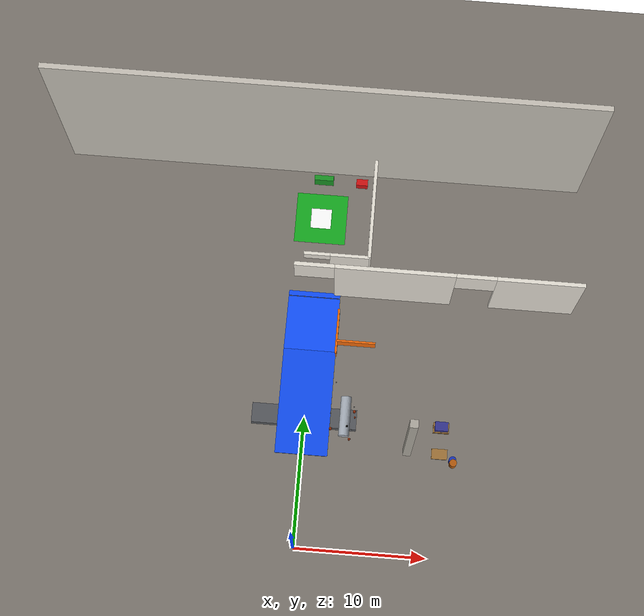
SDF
<sdf version="1.7">
 <world name="wind_tower_world">
  <model name="ground_plane">
   <static>true</static>
   <link name="link">
    <collision name="collision">
     <geometry><plane><normal>0 0 1</normal><size>200 200</size></plane></geometry>
     <surface>
      <friction><ode><mu>0.8</mu><mu2>0.8</mu2></ode></friction>
      <contact><ode><kp>500000</kp><kd>100</kd><max_vel>0.5</max_vel><min_depth>0.002</min_depth></ode></contact>
     </surface>
    </collision>
    <visual name="visual">
     <geometry><plane><normal>0 0 1</normal><size>200 200</size></plane></geometry>
     <material>
      <ambient>0.38 0.37 0.35 1</ambient>
      <diffuse>0.48 0.46 0.43 1</diffuse>
      <specular>0.05 0.05 0.05 1</specular>
     </material>
    </visual>
   </link>
  </model>
  <model name="wall_north">
   <static>true</static>
   <pose>0 30 9 0 0 0</pose>
   <link name="link">
    <collision name="col"><geometry><box><size>40 0.4 18</size></box></geometry></collision>
    <visual name="vis">
     <geometry><box><size>40 0.4 18</size></box></geometry>
     <material>
      <ambient>0.72 0.70 0.66 1</ambient>
      <diffuse>0.78 0.76 0.72 1</diffuse>
      <specular>0.03 0.03 0.03 1</specular>
     </material>
    </visual>
   </link>
  </model>
  <model name="sep_north_lintel">
   <static>true</static>
   <pose>0 20 6.5 0 0 0</pose>
   <link name="link">
    <collision name="col"><geometry><box><size>3.0 0.3 3.0</size></box></geometry></collision>
    <visual name="vis">
     <geometry><box><size>3.0 0.3 3.0</size></box></geometry>
     <material><ambient>0.86 0.84 0.80 1</ambient><diffuse>0.90 0.88 0.84 1</diffuse></material>
    </visual>
   </link>
  </model>
  <model name="sep_north_RM">
   <static>true</static>
   <pose>6.0 20 4 0 0 0</pose>
   <link name="link">
    <collision name="col"><geometry><box><size>9.0 0.3 8</size></box></geometry></collision>
    <visual name="vis">
     <geometry><box><size>9.0 0.3 8</size></box></geometry>
     <material>
      <ambient>0.86 0.84 0.80 1</ambient>
      <diffuse>0.90 0.88 0.84 1</diffuse>
      <specular>0.04 0.04 0.04 1</specular>
     </material>
    </visual>
   </link>
  </model>
  <model name="sep_north_RE">
   <static>true</static>
   <pose>16.75 20 4 0 0 0</pose>
   <link name="link">
    <collision name="col"><geometry><box><size>6.5 0.3 8</size></box></geometry></collision>
    <visual name="vis">
     <geometry><box><size>6.5 0.3 8</size></box></geometry>
     <material>
      <ambient>0.86 0.84 0.80 1</ambient>
      <diffuse>0.90 0.88 0.84 1</diffuse>
      <specular>0.04 0.04 0.04 1</specular>
     </material>
    </visual>
   </link>
  </model>
  <model name="sep_north_lintel_R">
   <static>true</static>
   <pose>12 20 6.5 0 0 0</pose>
   <link name="link">
    <collision name="col"><geometry><box><size>3.0 0.3 3.0</size></box></geometry></collision>
    <visual name="vis">
     <geometry><box><size>3.0 0.3 3.0</size></box></geometry>
     <material><ambient>0.86 0.84 0.80 1</ambient><diffuse>0.90 0.88 0.84 1</diffuse></material>
    </visual>
   </link>
  </model>
  <model name="charge_front_R">
   <static>true</static>
   <pose>2.5 22 2 0 0 0</pose>
   <link name="link">
    <collision name="col"><geometry><box><size>3.0 0.25 4</size></box></geometry></collision>
    <visual name="vis">
     <geometry><box><size>3.0 0.25 4</size></box></geometry>
     <material><ambient>0.86 0.84 0.80 1</ambient><diffuse>0.90 0.88 0.84 1</diffuse></material>
    </visual>
   </link>
  </model>
  <model name="charge_front_lintel">
   <static>true</static>
   <pose>0 22 3.5 0 0 0</pose>
   <link name="link">
    <collision name="col"><geometry><box><size>2.0 0.25 1.0</size></box></geometry></collision>
    <visual name="vis">
     <geometry><box><size>2.0 0.25 1.0</size></box></geometry>
     <material><ambient>0.86 0.84 0.80 1</ambient><diffuse>0.90 0.88 0.84 1</diffuse></material>
    </visual>
   </link>
  </model>
  <model name="charge_wall_E">
   <static>true</static>
   <pose>4 26 2 0 0 0</pose>
   <link name="link">
    <collision name="col"><geometry><box><size>0.25 8 4</size></box></geometry></collision>
    <visual name="vis">
     <geometry><box><size>0.25 8 4</size></box></geometry>
     <material><ambient>0.86 0.84 0.80 1</ambient><diffuse>0.90 0.88 0.84 1</diffuse></material>
    </visual>
   </link>
  </model>
  <model name="floor_marker_charge">
   <static>true</static>
   <pose>0 26 0.005 0 0 0</pose>
   <link name="link">
    <collision name="col"><geometry><box><size>4.0 4.0 0.01</size></box></geometry></collision>
    <visual name="vis">
     <geometry><box><size>4.0 4.0 0.01</size></box></geometry>
     <material>
      <ambient>0.05 0.60 0.10 0.85</ambient>
      <diffuse>0.06 0.75 0.12 0.85</diffuse>
      <specular>0.10 0.20 0.10 1</specular>
     </material>
    </visual>
    <visual name="battery_icon_floor">
     <pose>0 0 0.02 0 0 0</pose>
     <geometry><plane><normal>0 0 1</normal><size>1.6 1.6</size></plane></geometry>
     <material>
      <ambient>1 1 1 1</ambient>
      <diffuse>1 1 1 1</diffuse>
      <pbr>
       <metal>
        <albedo_map>file:///home/dmore/ROS2_Wind_Tower_Inspection/ros2_ws/src/wind_tower_inspection_behaviour/static/battery.png</albedo_map>
       </metal>
      </pbr>
     </material>
    </visual>
   </link>
  </model>
  <model name="charging_dock">
   <static>true</static>
   <pose>0 29 0.6 0 0 3.14159</pose>
   <link name="link">
    <collision name="col"><geometry><box><size>1.5 0.4 1.2</size></box></geometry></collision>
    <visual name="vis">
     <geometry><box><size>1.5 0.4 1.2</size></box></geometry>
     <material>
      <ambient>0.08 0.48 0.12 1</ambient>
      <diffuse>0.10 0.58 0.14 1</diffuse>
      <specular>0.20 0.20 0.20 1</specular>
     </material>
    </visual>
   </link>
  </model>
  <model name="toolbox">
   <static>true</static>
   <pose>3 29 0.4 0 0 0</pose>
   <link name="link">
    <collision name="col"><geometry><box><size>0.9 0.5 0.8</size></box></geometry></collision>
    <visual name="vis">
     <geometry><box><size>0.9 0.5 0.8</size></box></geometry>
     <material>
      <ambient>0.72 0.06 0.06 1</ambient>
      <diffuse>0.82 0.07 0.07 1</diffuse>
      <specular>0.30 0.30 0.30 1</specular>
     </material>
    </visual>
   </link>
  </model>
  <model name="column_NE">
   <static>true</static>
   <pose>8 8 6 0 0 0</pose>
   <link name="link">
    <collision name="col"><geometry><box><size>0.6 0.6 12</size></box></geometry></collision>
    <visual name="vis">
     <geometry><box><size>0.6 0.6 12</size></box></geometry>
     <material>
      <ambient>0.62 0.60 0.57 1</ambient>
      <diffuse>0.68 0.66 0.62 1</diffuse>
      <specular>0.04 0.04 0.04 1</specular>
     </material>
    </visual>
   </link>
  </model>
  <model name="roller_frame_north">
   <static>true</static>
   <pose>0 10 0.4 0 0 0</pose>
   <link name="link">
    <collision name="col"><geometry><box><size>8.0 1.5 0.8</size></box></geometry></collision>
    <visual name="vis">
     <geometry><box><size>8.0 1.5 0.8</size></box></geometry>
     <material>
      <ambient>0.28 0.29 0.30 1</ambient>
      <diffuse>0.33 0.34 0.36 1</diffuse>
      <specular>0.12 0.12 0.12 1</specular>
     </material>
    </visual>
   </link>
  </model>
  <model name="roller_N_right">
   <static>true</static>
   <pose>3.11 10 1.89 1.5708 0 0</pose>
   <link name="link">
    <collision name="col">
     <geometry><cylinder><radius>0.4</radius><length>3.0</length></cylinder></geometry>
    </collision>
    <visual name="vis">
     <geometry><cylinder><radius>0.4</radius><length>3.0</length></cylinder></geometry>
     <material>
      <ambient>0.55 0.57 0.60 1</ambient>
      <diffuse>0.65 0.68 0.72 1</diffuse>
      <specular>0.70 0.70 0.70 1</specular>
     </material>
    </visual>
   </link>
  </model>
  <model name="ramp_north_entry">
   <static>true</static>
   <pose>0 19.8 -0.056 -0.115 0 0</pose>
   <link name="link">
    <collision name="col">
     <geometry><box><size>4.0 0.4 0.15</size></box></geometry>
     <surface>
      <friction><ode><mu>3.0</mu><mu2>3.0</mu2><slip1>0.0</slip1><slip2>0.0</slip2></ode></friction>
      <contact><ode><kp>1000000</kp><kd>50</kd><max_vel>0.1</max_vel><min_depth>0.001</min_depth></ode></contact>
     </surface>
    </collision>
    <visual name="vis">
     <geometry><box><size>4.0 0.4 0.15</size></box></geometry>
     <material>
      <ambient>0.04 0.20 0.55 1</ambient>
      <diffuse>0.06 0.30 0.95 1</diffuse>
      <specular>0.25 0.25 0.25 1</specular>
     </material>
    </visual>
   </link>
  </model>
  <model name="ramp_north">
   <static>true</static>
   <pose>0 17.3 0.497 -0.230 0 0</pose>
   <link name="link">
    <collision name="col">
     <geometry><box><size>4.0 4.6 0.15</size></box></geometry>
     <surface>
      <friction><ode><mu>3.0</mu><mu2>3.0</mu2><slip1>0.0</slip1><slip2>0.0</slip2></ode></friction>
      <contact><ode><kp>1000000</kp><kd>50</kd><max_vel>0.1</max_vel><min_depth>0.001</min_depth></ode></contact>
     </surface>
    </collision>
    <visual name="vis">
     <geometry><box><size>4.0 4.6 0.15</size></box></geometry>
     <material>
      <ambient>0.04 0.20 0.55 1</ambient>
      <diffuse>0.06 0.30 0.95 1</diffuse>
      <specular>0.25 0.25 0.25 1</specular>
     </material>
    </visual>
   </link>
  </model>
  <model name="ramp_inner">
   <static>true</static>
   <pose>0 11.05 0.972 0.01161 0 0</pose>
   <link name="link">
    <collision name="col">
     <geometry><box><size>4.0 8.1 0.15</size></box></geometry>
     <surface>
      <friction><ode><mu>3.0</mu><mu2>3.0</mu2><slip1>0.0</slip1><slip2>0.0</slip2></ode></friction>
      <contact><ode><kp>1000000</kp><kd>50</kd><max_vel>0.1</max_vel><min_depth>0.001</min_depth></ode></contact>
     </surface>
    </collision>
    <visual name="vis">
     <geometry><box><size>4.0 8.1 0.15</size></box></geometry>
     <material>
      <ambient>0.04 0.20 0.55 1</ambient>
      <diffuse>0.06 0.30 0.95 1</diffuse>
      <specular>0.25 0.25 0.25 1</specular>
     </material>
    </visual>
   </link>
  </model>
  <model name="barrier_north_R">
   <static>true</static>
   <pose>3.5 16 0.6 0 0 0</pose>
   <link name="link">
    <collision name="col"><geometry><box><size>3.0 0.15 1.2</size></box></geometry></collision>
    <visual name="vis">
     <geometry><box><size>3.0 0.15 1.2</size></box></geometry>
     <material>
      <ambient>0.85 0.35 0.03 1</ambient>
      <diffuse>0.95 0.42 0.04 1</diffuse>
      <specular>0.25 0.25 0.25 1</specular>
     </material>
    </visual>
   </link>
  </model>
  <model name="barrier_ramp_E">
   <static>true</static>
   <pose>2.0 16.75 0.6 0 0 0</pose>
   <link name="link">
    <collision name="col"><geometry><box><size>0.15 3.5 1.2</size></box></geometry></collision>
    <visual name="vis">
     <geometry><box><size>0.15 3.5 1.2</size></box></geometry>
     <material>
      <ambient>0.85 0.35 0.03 1</ambient>
      <diffuse>0.95 0.42 0.04 1</diffuse>
      <specular>0.25 0.25 0.25 1</specular>
     </material>
    </visual>
   </link>
  </model>
  <model name="defect_0001_pitting">
   <static>true</static>
   <pose>2.018058 10.196669 1.680613 0 0 0</pose>
   <link name="link">
    <visual name="visual">
     <geometry><sphere><radius>0.04030</radius></sphere></geometry>
     <material>
      <ambient>0.15 0.15 0.15 1</ambient>
      <diffuse>0.15 0.15 0.15 1</diffuse>
      <specular>0.1 0.1 0.1 1</specular>
     </material>
     <cast_shadows>false</cast_shadows>
    </visual>
    <collision name="collision">
     <geometry><sphere><radius>0.04030</radius></sphere></geometry>
     <surface><contact><collide_bitmask>0</collide_bitmask></contact></surface>
    </collision>
   </link>
  </model>
  <model name="defect_0004_rust">
   <static>true</static>
   <pose>0.156667 8.045192 1.165340 0 0 0</pose>
   <link name="link">
    <visual name="visual">
     <geometry><sphere><radius>0.08714</radius></sphere></geometry>
     <material>
      <ambient>0.55 0.18 0.05 1</ambient>
      <diffuse>0.55 0.18 0.05 1</diffuse>
      <specular>0.1 0.1 0.1 1</specular>
     </material>
     <cast_shadows>false</cast_shadows>
    </visual>
    <collision name="collision">
     <geometry><sphere><radius>0.08714</radius></sphere></geometry>
     <surface><contact><collide_bitmask>0</collide_bitmask></contact></surface>
    </collision>
   </link>
  </model>
  <model name="defect_0027_rust">
   <static>true</static>
   <pose>3.795225 9.772176 5.320032 0 0 0</pose>
   <link name="link">
    <visual name="visual">
     <geometry><sphere><radius>0.11631</radius></sphere></geometry>
     <material>
      <ambient>0.55 0.18 0.05 1</ambient>
      <diffuse>0.55 0.18 0.05 1</diffuse>
      <specular>0.1 0.1 0.1 1</specular>
     </material>
     <cast_shadows>false</cast_shadows>
    </visual>
    <collision name="collision">
     <geometry><sphere><radius>0.11631</radius></sphere></geometry>
     <surface><contact><collide_bitmask>0</collide_bitmask></contact></surface>
    </collision>
   </link>
  </model>
  <model name="defect_0043_rust">
   <static>true</static>
   <pose>3.557432 7.994922 3.602101 0 0 0</pose>
   <link name="link">
    <visual name="visual">
     <geometry><sphere><radius>0.10277</radius></sphere></geometry>
     <material>
      <ambient>0.55 0.18 0.05 1</ambient>
      <diffuse>0.55 0.18 0.05 1</diffuse>
      <specular>0.1 0.1 0.1 1</specular>
     </material>
     <cast_shadows>false</cast_shadows>
    </visual>
    <collision name="collision">
     <geometry><sphere><radius>0.10277</radius></sphere></geometry>
     <surface><contact><collide_bitmask>0</collide_bitmask></contact></surface>
    </collision>
   </link>
  </model>
  <model name="defect_0045_pitting">
   <static>true</static>
   <pose>2.252073 12.588295 1.834588 0 0 0</pose>
   <link name="link">
    <visual name="visual">
     <geometry><sphere><radius>0.04020</radius></sphere></geometry>
     <material>
      <ambient>0.15 0.15 0.15 1</ambient>
      <diffuse>0.15 0.15 0.15 1</diffuse>
      <specular>0.1 0.1 0.1 1</specular>
     </material>
     <cast_shadows>false</cast_shadows>
    </visual>
    <collision name="collision">
     <geometry><sphere><radius>0.04020</radius></sphere></geometry>
     <surface><contact><collide_bitmask>0</collide_bitmask></contact></surface>
    </collision>
   </link>
  </model>
  <model name="defect_0046_rust">
   <static>true</static>
   <pose>3.857718 9.403486 4.967430 0 0 0</pose>
   <link name="link">
    <visual name="visual">
     <geometry><sphere><radius>0.06714</radius></sphere></geometry>
     <material>
      <ambient>0.55 0.18 0.05 1</ambient>
      <diffuse>0.55 0.18 0.05 1</diffuse>
      <specular>0.1 0.1 0.1 1</specular>
     </material>
     <cast_shadows>false</cast_shadows>
    </visual>
    <collision name="collision">
     <geometry><sphere><radius>0.06714</radius></sphere></geometry>
     <surface><contact><collide_bitmask>0</collide_bitmask></contact></surface>
    </collision>
   </link>
  </model>
  <model name="defect_0050_through_hole">
   <static>true</static>
   <pose>3.320100 9.066089 3.073237 0 0 0</pose>
   <link name="link">
    <visual name="visual">
     <geometry><sphere><radius>0.08632</radius></sphere></geometry>
     <material>
      <ambient>0.00 0.00 0.00 1</ambient>
      <diffuse>0.00 0.00 0.00 1</diffuse>
      <specular>0.1 0.1 0.1 1</specular>
     </material>
     <cast_shadows>false</cast_shadows>
    </visual>
    <collision name="collision">
     <geometry><sphere><radius>0.08632</radius></sphere></geometry>
     <surface><contact><collide_bitmask>0</collide_bitmask></contact></surface>
    </collision>
   </link>
  </model>
  <model name="defect_0067_pitting">
   <static>true</static>
   <pose>3.718334 8.244708 6.192134 0 0 0</pose>
   <link name="link">
    <visual name="visual">
     <geometry><sphere><radius>0.02023</radius></sphere></geometry>
     <material>
      <ambient>0.15 0.15 0.15 1</ambient>
      <diffuse>0.15 0.15 0.15 1</diffuse>
      <specular>0.1 0.1 0.1 1</specular>
     </material>
     <cast_shadows>false</cast_shadows>
    </visual>
    <collision name="collision">
     <geometry><sphere><radius>0.02023</radius></sphere></geometry>
     <surface><contact><collide_bitmask>0</collide_bitmask></contact></surface>
    </collision>
   </link>
  </model>
  <model name="defect_0071_rust">
   <static>true</static>
   <pose>2.089153 8.998697 1.810775 0 0 0</pose>
   <link name="link">
    <visual name="visual">
     <geometry><sphere><radius>0.11243</radius></sphere></geometry>
     <material>
      <ambient>0.55 0.18 0.05 1</ambient>
      <diffuse>0.55 0.18 0.05 1</diffuse>
      <specular>0.1 0.1 0.1 1</specular>
     </material>
     <cast_shadows>false</cast_shadows>
    </visual>
    <collision name="collision">
     <geometry><sphere><radius>0.11243</radius></sphere></geometry>
     <surface><contact><collide_bitmask>0</collide_bitmask></contact></surface>
    </collision>
   </link>
  </model>
  <model name="defect_0077_pitting">
   <static>true</static>
   <pose>3.757771 10.372041 4.037094 0 0 0</pose>
   <link name="link">
    <visual name="visual">
     <geometry><sphere><radius>0.04582</radius></sphere></geometry>
     <material>
      <ambient>0.15 0.15 0.15 1</ambient>
      <diffuse>0.15 0.15 0.15 1</diffuse>
      <specular>0.1 0.1 0.1 1</specular>
     </material>
     <cast_shadows>false</cast_shadows>
    </visual>
    <collision name="collision">
     <geometry><sphere><radius>0.04582</radius></sphere></geometry>
     <surface><contact><collide_bitmask>0</collide_bitmask></contact></surface>
    </collision>
   </link>
  </model>
  <model name="pallet_e3">
   <pose>10.5 8.0 0.075 0 0 0</pose>
   <static>true</static>
   <link name="link">
    <visual name="vis">
     <geometry><box><size>1.2 0.8 0.15</size></box></geometry>
     <material><ambient>0.62 0.45 0.22 1</ambient><diffuse>0.62 0.45 0.22 1</diffuse></material>
    </visual>
    <collision name="col"><geometry><box><size>1.2 0.8 0.15</size></box></geometry></collision>
   </link>
  </model>
  <model name="pallet_e4">
   <pose>10.5 10.0 0.075 0 0 0</pose>
   <static>true</static>
   <link name="link">
    <visual name="vis">
     <geometry><box><size>1.2 0.8 0.15</size></box></geometry>
     <material><ambient>0.62 0.45 0.22 1</ambient><diffuse>0.62 0.45 0.22 1</diffuse></material>
    </visual>
    <collision name="col"><geometry><box><size>1.2 0.8 0.15</size></box></geometry></collision>
    <visual name="pallet2_vis">
     <pose>0 0 0.225 0 0 0</pose>
     <geometry><box><size>1.2 0.8 0.15</size></box></geometry>
     <material><ambient>0.62 0.45 0.22 1</ambient><diffuse>0.62 0.45 0.22 1</diffuse></material>
    </visual>
    <collision name="pallet2_col">
     <pose>0 0 0.225 0 0 0</pose>
     <geometry><box><size>1.2 0.8 0.15</size></box></geometry>
    </collision>
    <visual name="box_vis">
     <pose>0 0 0.70 0 0 0</pose>
     <geometry><box><size>1.0 0.7 0.55</size></box></geometry>
     <material><ambient>0.20 0.20 0.55 1</ambient><diffuse>0.20 0.20 0.55 1</diffuse></material>
    </visual>
    <collision name="box_col">
     <pose>0 0 0.70 0 0 0</pose>
     <geometry><box><size>1.0 0.7 0.55</size></box></geometry>
    </collision>
   </link>
  </model>
  <model name="barrel_e1">
   <pose>11.5 7.5 0.44 0 0 0</pose>
   <static>true</static>
   <link name="link">
    <visual name="vis">
     <geometry><cylinder><radius>0.28</radius><length>0.88</length></cylinder></geometry>
     <material><ambient>0.10 0.20 0.70 1</ambient><diffuse>0.10 0.20 0.70 1</diffuse></material>
    </visual>
    <collision name="col">
     <geometry><cylinder><radius>0.28</radius><length>0.88</length></cylinder></geometry>
    </collision>
   </link>
  </model>
  <model name="barrel_e3">
   <pose>11.5 7.15 1.32 0 0 0</pose>
   <static>true</static>
   <link name="link">
    <visual name="vis">
     <geometry><cylinder><radius>0.28</radius><length>0.88</length></cylinder></geometry>
     <material><ambient>0.70 0.35 0.05 1</ambient><diffuse>0.70 0.35 0.05 1</diffuse></material>
    </visual>
    <collision name="col">
     <geometry><cylinder><radius>0.28</radius><length>0.88</length></cylinder></geometry>
    </collision>
   </link>
  </model>
 </world>
</sdf>
